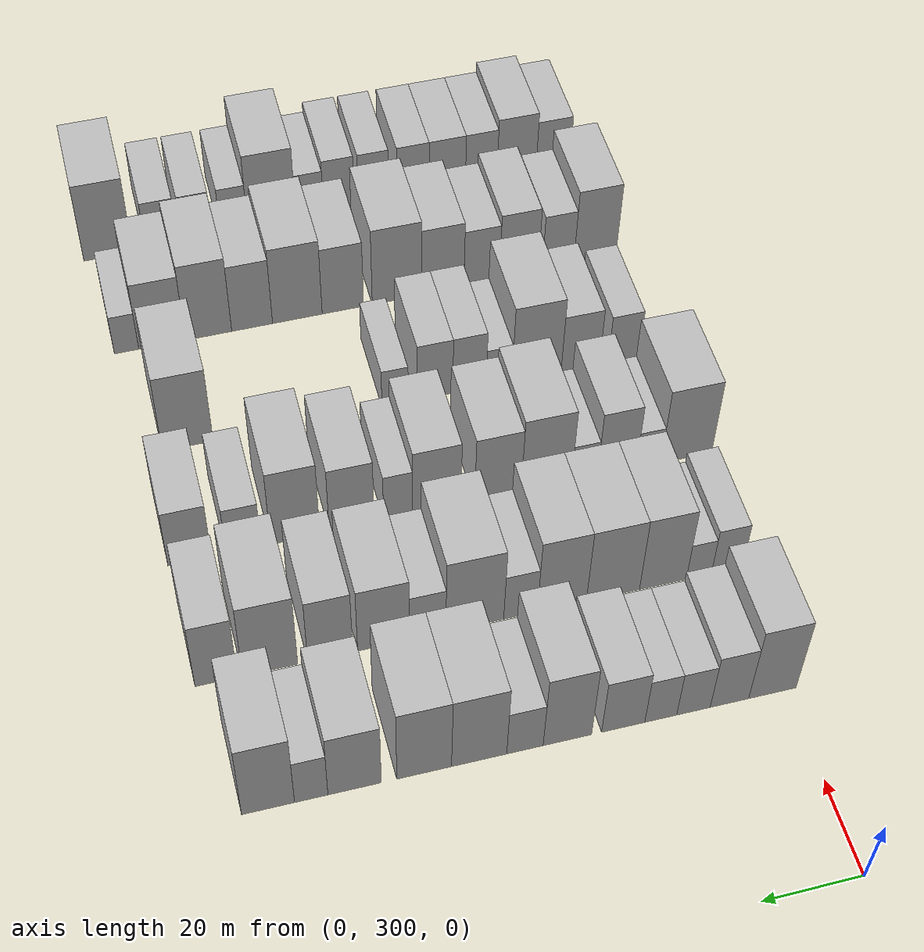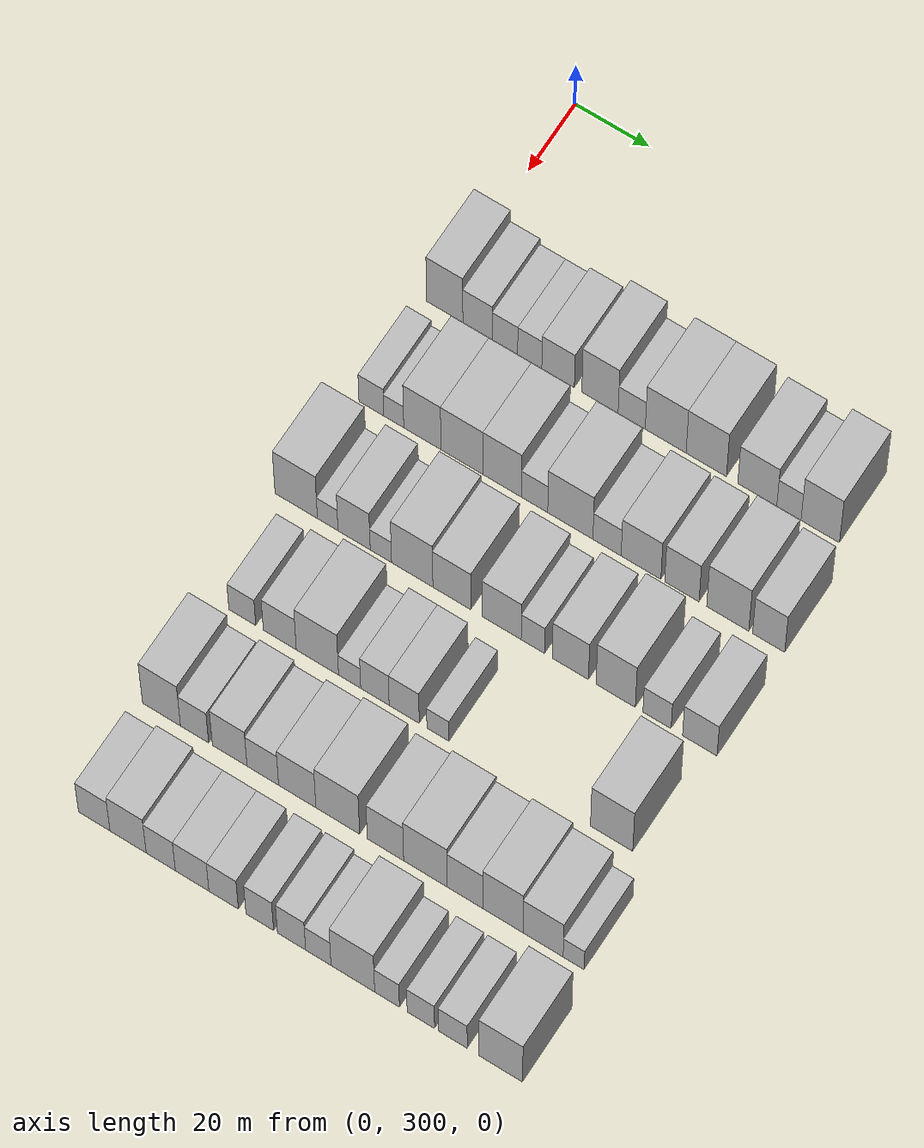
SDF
<sdf version="1.6">
 <world name="default">
  <model name="building_101">
   <static>1</static>
   <pose>50.0000 302.9413 0 0.000000 0.000000 0.000000</pose>
   <link name="link">
    <pose>0 0 12.00 0 0 0</pose>
    <collision name="collision"><geometry><box><size>20.0000 9.7665 24.0000</size></box></geometry></collision>
    <visual name="visual">
     <cast_shadows>0</cast_shadows>
     <geometry><box><size>20.0000 9.7665 24.0000</size></box></geometry>
     <material>
      <script>
       <uri>model://HANNAS_wall/materials/scripts</uri>
       <uri>model://HANNAS_wall/materials/textures</uri>
       <name>vrc/HANNAS_wall</name>
      </script>
     </material>
    </visual>
   </link>
  </model>
  <model name="building_102">
   <static>1</static>
   <pose>50.0000 311.7686 0 0.000000 0.000000 0.000000</pose>
   <link name="link">
    <pose>0 0 9.00 0 0 0</pose>
    <collision name="collision"><geometry><box><size>20.0000 7.8881 18.0000</size></box></geometry></collision>
    <visual name="visual">
     <cast_shadows>0</cast_shadows>
     <geometry><box><size>20.0000 7.8881 18.0000</size></box></geometry>
     <material>
      <script>
       <uri>model://HANNAS_wall/materials/scripts</uri>
       <uri>model://HANNAS_wall/materials/textures</uri>
       <name>vrc/HANNAS_wall</name>
      </script>
     </material>
    </visual>
   </link>
  </model>
  <model name="building_103">
   <static>1</static>
   <pose>50.0000 319.1199 0 0.000000 0.000000 0.000000</pose>
   <link name="link">
    <pose>0 0 7.50 0 0 0</pose>
    <collision name="collision"><geometry><box><size>20.0000 6.8146 15.0000</size></box></geometry></collision>
    <visual name="visual">
     <cast_shadows>0</cast_shadows>
     <geometry><box><size>20.0000 6.8146 15.0000</size></box></geometry>
     <material>
      <script>
       <uri>model://HANNAS_wall/materials/scripts</uri>
       <uri>model://HANNAS_wall/materials/textures</uri>
       <name>vrc/HANNAS_wall</name>
      </script>
     </material>
    </visual>
   </link>
  </model>
  <model name="building_104">
   <static>1</static>
   <pose>50.0000 325.7570 0 0.000000 0.000000 0.000000</pose>
   <link name="link">
    <pose>0 0 7.50 0 0 0</pose>
    <collision name="collision"><geometry><box><size>20.0000 6.4597 15.0000</size></box></geometry></collision>
    <visual name="visual">
     <cast_shadows>0</cast_shadows>
     <geometry><box><size>20.0000 6.4597 15.0000</size></box></geometry>
     <material>
      <script>
       <uri>model://HANNAS_wall/materials/scripts</uri>
       <uri>model://HANNAS_wall/materials/textures</uri>
       <name>vrc/HANNAS_wall</name>
      </script>
     </material>
    </visual>
   </link>
  </model>
  <model name="building_105">
   <static>1</static>
   <pose>50.0000 333.3374 0 0.000000 0.000000 0.000000</pose>
   <link name="link">
    <pose>0 0 9.00 0 0 0</pose>
    <collision name="collision"><geometry><box><size>20.0000 8.7010 18.0000</size></box></geometry></collision>
    <visual name="visual">
     <cast_shadows>0</cast_shadows>
     <geometry><box><size>20.0000 8.7010 18.0000</size></box></geometry>
     <material>
      <script>
       <uri>model://HANNAS_wall/materials/scripts</uri>
       <uri>model://HANNAS_wall/materials/textures</uri>
       <name>vrc/HANNAS_wall</name>
      </script>
     </material>
    </visual>
   </link>
  </model>
  <model name="building_106">
   <static>1</static>
   <pose>50.0000 344.5230 0 0.000000 0.000000 0.000000</pose>
   <link name="link">
    <pose>0 0 12.00 0 0 0</pose>
    <collision name="collision"><geometry><box><size>20.0000 9.6703 24.0000</size></box></geometry></collision>
    <visual name="visual">
     <cast_shadows>0</cast_shadows>
     <geometry><box><size>20.0000 9.6703 24.0000</size></box></geometry>
     <material>
      <script>
       <uri>model://HANNAS_wall/materials/scripts</uri>
       <uri>model://HANNAS_wall/materials/textures</uri>
       <name>vrc/HANNAS_wall</name>
      </script>
     </material>
    </visual>
   </link>
  </model>
  <model name="building_107">
   <static>1</static>
   <pose>50.0000 352.9662 0 0.000000 0.000000 0.000000</pose>
   <link name="link">
    <pose>0 0 7.50 0 0 0</pose>
    <collision name="collision"><geometry><box><size>20.0000 7.2159 15.0000</size></box></geometry></collision>
    <visual name="visual">
     <cast_shadows>0</cast_shadows>
     <geometry><box><size>20.0000 7.2159 15.0000</size></box></geometry>
     <material>
      <script>
       <uri>model://HANNAS_wall/materials/scripts</uri>
       <uri>model://HANNAS_wall/materials/textures</uri>
       <name>vrc/HANNAS_wall</name>
      </script>
     </material>
    </visual>
   </link>
  </model>
  <model name="building_108">
   <static>1</static>
   <pose>50.0000 362.0036 0 0.000000 0.000000 0.000000</pose>
   <link name="link">
    <pose>0 0 12.00 0 0 0</pose>
    <collision name="collision"><geometry><box><size>20.0000 10.8590 24.0000</size></box></geometry></collision>
    <visual name="visual">
     <cast_shadows>0</cast_shadows>
     <geometry><box><size>20.0000 10.8590 24.0000</size></box></geometry>
     <material>
      <script>
       <uri>model://HANNAS_wall/materials/scripts</uri>
       <uri>model://HANNAS_wall/materials/textures</uri>
       <name>vrc/HANNAS_wall</name>
      </script>
     </material>
    </visual>
   </link>
  </model>
  <model name="building_109">
   <static>1</static>
   <pose>50.0000 372.7715 0 0.000000 0.000000 0.000000</pose>
   <link name="link">
    <pose>0 0 12.00 0 0 0</pose>
    <collision name="collision"><geometry><box><size>20.0000 10.6767 24.0000</size></box></geometry></collision>
    <visual name="visual">
     <cast_shadows>0</cast_shadows>
     <geometry><box><size>20.0000 10.6767 24.0000</size></box></geometry>
     <material>
      <script>
       <uri>model://HANNAS_wall/materials/scripts</uri>
       <uri>model://HANNAS_wall/materials/textures</uri>
       <name>vrc/HANNAS_wall</name>
      </script>
     </material>
    </visual>
   </link>
  </model>
  <model name="building_110">
   <static>1</static>
   <pose>50.0000 386.2558 0 0.000000 0.000000 0.000000</pose>
   <link name="link">
    <pose>0 0 10.50 0 0 0</pose>
    <collision name="collision"><geometry><box><size>20.0000 10.2919 21.0000</size></box></geometry></collision>
    <visual name="visual">
     <cast_shadows>0</cast_shadows>
     <geometry><box><size>20.0000 10.2919 21.0000</size></box></geometry>
     <material>
      <script>
       <uri>model://HANNAS_wall/materials/scripts</uri>
       <uri>model://HANNAS_wall/materials/textures</uri>
       <name>vrc/HANNAS_wall</name>
      </script>
     </material>
    </visual>
   </link>
  </model>
  <model name="building_111">
   <static>1</static>
   <pose>50.0000 394.5986 0 0.000000 0.000000 0.000000</pose>
   <link name="link">
    <pose>0 0 7.50 0 0 0</pose>
    <collision name="collision"><geometry><box><size>20.0000 6.3937 15.0000</size></box></geometry></collision>
    <visual name="visual">
     <cast_shadows>0</cast_shadows>
     <geometry><box><size>20.0000 6.3937 15.0000</size></box></geometry>
     <material>
      <script>
       <uri>model://HANNAS_wall/materials/scripts</uri>
       <uri>model://HANNAS_wall/materials/textures</uri>
       <name>vrc/HANNAS_wall</name>
      </script>
     </material>
    </visual>
   </link>
  </model>
  <model name="building_112">
   <static>1</static>
   <pose>50.0000 402.8435 0 0.000000 0.000000 0.000000</pose>
   <link name="link">
    <pose>0 0 12.00 0 0 0</pose>
    <collision name="collision"><geometry><box><size>20.0000 10.0961 24.0000</size></box></geometry></collision>
    <visual name="visual">
     <cast_shadows>0</cast_shadows>
     <geometry><box><size>20.0000 10.0961 24.0000</size></box></geometry>
     <material>
      <script>
       <uri>model://HANNAS_wall/materials/scripts</uri>
       <uri>model://HANNAS_wall/materials/textures</uri>
       <name>vrc/HANNAS_wall</name>
      </script>
     </material>
    </visual>
   </link>
  </model>
  <model name="building_216">
   <static>1</static>
   <pose>79.0000 301.9213 0 0.000000 0.000000 0.000000</pose>
   <link name="link">
    <pose>0 0 7.50 0 0 0</pose>
    <collision name="collision"><geometry><box><size>20.0000 6.6707 15.0000</size></box></geometry></collision>
    <visual name="visual">
     <cast_shadows>0</cast_shadows>
     <geometry><box><size>20.0000 6.6707 15.0000</size></box></geometry>
     <material>
      <script>
       <uri>model://HANNAS_wall/materials/scripts</uri>
       <uri>model://HANNAS_wall/materials/textures</uri>
       <name>vrc/HANNAS_wall</name>
      </script>
     </material>
    </visual>
   </link>
  </model>
  <model name="building_217">
   <static>1</static>
   <pose>79.0000 307.9347 0 0.000000 0.000000 0.000000</pose>
   <link name="link">
    <pose>0 0 6.00 0 0 0</pose>
    <collision name="collision"><geometry><box><size>20.0000 5.3560 12.0000</size></box></geometry></collision>
    <visual name="visual">
     <cast_shadows>0</cast_shadows>
     <geometry><box><size>20.0000 5.3560 12.0000</size></box></geometry>
     <material>
      <script>
       <uri>model://HANNAS_wall/materials/scripts</uri>
       <uri>model://HANNAS_wall/materials/textures</uri>
       <name>vrc/HANNAS_wall</name>
      </script>
     </material>
    </visual>
   </link>
  </model>
  <model name="building_218">
   <static>1</static>
   <pose>79.0000 315.5856 0 0.000000 0.000000 0.000000</pose>
   <link name="link">
    <pose>0 0 12.00 0 0 0</pose>
    <collision name="collision"><geometry><box><size>20.0000 9.9458 24.0000</size></box></geometry></collision>
    <visual name="visual">
     <cast_shadows>0</cast_shadows>
     <geometry><box><size>20.0000 9.9458 24.0000</size></box></geometry>
     <material>
      <script>
       <uri>model://HANNAS_wall/materials/scripts</uri>
       <uri>model://HANNAS_wall/materials/textures</uri>
       <name>vrc/HANNAS_wall</name>
      </script>
     </material>
    </visual>
   </link>
  </model>
  <model name="building_219">
   <static>1</static>
   <pose>79.0000 326.1635 0 0.000000 0.000000 0.000000</pose>
   <link name="link">
    <pose>0 0 12.00 0 0 0</pose>
    <collision name="collision"><geometry><box><size>20.0000 11.2100 24.0000</size></box></geometry></collision>
    <visual name="visual">
     <cast_shadows>0</cast_shadows>
     <geometry><box><size>20.0000 11.2100 24.0000</size></box></geometry>
     <material>
      <script>
       <uri>model://HANNAS_wall/materials/scripts</uri>
       <uri>model://HANNAS_wall/materials/textures</uri>
       <name>vrc/HANNAS_wall</name>
      </script>
     </material>
    </visual>
   </link>
  </model>
  <model name="building_220">
   <static>1</static>
   <pose>79.0000 336.9080 0 0.000000 0.000000 0.000000</pose>
   <link name="link">
    <pose>0 0 12.00 0 0 0</pose>
    <collision name="collision"><geometry><box><size>20.0000 10.2789 24.0000</size></box></geometry></collision>
    <visual name="visual">
     <cast_shadows>0</cast_shadows>
     <geometry><box><size>20.0000 10.2789 24.0000</size></box></geometry>
     <material>
      <script>
       <uri>model://HANNAS_wall/materials/scripts</uri>
       <uri>model://HANNAS_wall/materials/textures</uri>
       <name>vrc/HANNAS_wall</name>
      </script>
     </material>
    </visual>
   </link>
  </model>
  <model name="building_221">
   <static>1</static>
   <pose>79.0000 345.5258 0 0.000000 0.000000 0.000000</pose>
   <link name="link">
    <pose>0 0 7.50 0 0 0</pose>
    <collision name="collision"><geometry><box><size>20.0000 6.9569 15.0000</size></box></geometry></collision>
    <visual name="visual">
     <cast_shadows>0</cast_shadows>
     <geometry><box><size>20.0000 6.9569 15.0000</size></box></geometry>
     <material>
      <script>
       <uri>model://HANNAS_wall/materials/scripts</uri>
       <uri>model://HANNAS_wall/materials/textures</uri>
       <name>vrc/HANNAS_wall</name>
      </script>
     </material>
    </visual>
   </link>
  </model>
  <model name="building_222">
   <static>1</static>
   <pose>79.0000 354.9877 0 0.000000 0.000000 0.000000</pose>
   <link name="link">
    <pose>0 0 12.00 0 0 0</pose>
    <collision name="collision"><geometry><box><size>20.0000 11.9668 24.0000</size></box></geometry></collision>
    <visual name="visual">
     <cast_shadows>0</cast_shadows>
     <geometry><box><size>20.0000 11.9668 24.0000</size></box></geometry>
     <material>
      <script>
       <uri>model://HANNAS_wall/materials/scripts</uri>
       <uri>model://HANNAS_wall/materials/textures</uri>
       <name>vrc/HANNAS_wall</name>
      </script>
     </material>
    </visual>
   </link>
  </model>
  <model name="building_223">
   <static>1</static>
   <pose>79.0000 364.6992 0 0.000000 0.000000 0.000000</pose>
   <link name="link">
    <pose>0 0 7.50 0 0 0</pose>
    <collision name="collision"><geometry><box><size>20.0000 7.4563 15.0000</size></box></geometry></collision>
    <visual name="visual">
     <cast_shadows>0</cast_shadows>
     <geometry><box><size>20.0000 7.4563 15.0000</size></box></geometry>
     <material>
      <script>
       <uri>model://HANNAS_wall/materials/scripts</uri>
       <uri>model://HANNAS_wall/materials/textures</uri>
       <name>vrc/HANNAS_wall</name>
      </script>
     </material>
    </visual>
   </link>
  </model>
  <model name="building_224">
   <static>1</static>
   <pose>79.0000 373.6719 0 0.000000 0.000000 0.000000</pose>
   <link name="link">
    <pose>0 0 10.50 0 0 0</pose>
    <collision name="collision"><geometry><box><size>20.0000 10.4891 21.0000</size></box></geometry></collision>
    <visual name="visual">
     <cast_shadows>0</cast_shadows>
     <geometry><box><size>20.0000 10.4891 21.0000</size></box></geometry>
     <material>
      <script>
       <uri>model://HANNAS_wall/materials/scripts</uri>
       <uri>model://HANNAS_wall/materials/textures</uri>
       <name>vrc/HANNAS_wall</name>
      </script>
     </material>
    </visual>
   </link>
  </model>
  <model name="building_225">
   <static>1</static>
   <pose>79.0000 384.4469 0 0.000000 0.000000 0.000000</pose>
   <link name="link">
    <pose>0 0 10.50 0 0 0</pose>
    <collision name="collision"><geometry><box><size>20.0000 9.0608 21.0000</size></box></geometry></collision>
    <visual name="visual">
     <cast_shadows>0</cast_shadows>
     <geometry><box><size>20.0000 9.0608 21.0000</size></box></geometry>
     <material>
      <script>
       <uri>model://HANNAS_wall/materials/scripts</uri>
       <uri>model://HANNAS_wall/materials/textures</uri>
       <name>vrc/HANNAS_wall</name>
      </script>
     </material>
    </visual>
   </link>
  </model>
  <model name="building_226">
   <static>1</static>
   <pose>79.0000 396.4962 0 0.000000 0.000000 0.000000</pose>
   <link name="link">
    <pose>0 0 12.00 0 0 0</pose>
    <collision name="collision"><geometry><box><size>20.0000 11.0379 24.0000</size></box></geometry></collision>
    <visual name="visual">
     <cast_shadows>0</cast_shadows>
     <geometry><box><size>20.0000 11.0379 24.0000</size></box></geometry>
     <material>
      <script>
       <uri>model://HANNAS_wall/materials/scripts</uri>
       <uri>model://HANNAS_wall/materials/textures</uri>
       <name>vrc/HANNAS_wall</name>
      </script>
     </material>
    </visual>
   </link>
  </model>
  <model name="building_227">
   <static>1</static>
   <pose>79.0000 407.2242 0 0.000000 0.000000 0.000000</pose>
   <link name="link">
    <pose>0 0 10.50 0 0 0</pose>
    <collision name="collision"><geometry><box><size>20.0000 8.4182 21.0000</size></box></geometry></collision>
    <visual name="visual">
     <cast_shadows>0</cast_shadows>
     <geometry><box><size>20.0000 8.4182 21.0000</size></box></geometry>
     <material>
      <script>
       <uri>model://HANNAS_wall/materials/scripts</uri>
       <uri>model://HANNAS_wall/materials/textures</uri>
       <name>vrc/HANNAS_wall</name>
      </script>
     </material>
    </visual>
   </link>
  </model>
  <model name="building_325">
   <static>1</static>
   <pose>108.0000 300.6430 0 0.000000 0.000000 0.000000</pose>
   <link name="link">
    <pose>0 0 12.00 0 0 0</pose>
    <collision name="collision"><geometry><box><size>20.0000 11.3291 24.0000</size></box></geometry></collision>
    <visual name="visual">
     <cast_shadows>0</cast_shadows>
     <geometry><box><size>20.0000 11.3291 24.0000</size></box></geometry>
     <material>
      <script>
       <uri>model://HANNAS_wall/materials/scripts</uri>
       <uri>model://HANNAS_wall/materials/textures</uri>
       <name>vrc/HANNAS_wall</name>
      </script>
     </material>
    </visual>
   </link>
  </model>
  <model name="building_326">
   <static>1</static>
   <pose>108.0000 309.0615 0 0.000000 0.000000 0.000000</pose>
   <link name="link">
    <pose>0 0 6.00 0 0 0</pose>
    <collision name="collision"><geometry><box><size>20.0000 5.5080 12.0000</size></box></geometry></collision>
    <visual name="visual">
     <cast_shadows>0</cast_shadows>
     <geometry><box><size>20.0000 5.5080 12.0000</size></box></geometry>
     <material>
      <script>
       <uri>model://HANNAS_wall/materials/scripts</uri>
       <uri>model://HANNAS_wall/materials/textures</uri>
       <name>vrc/HANNAS_wall</name>
      </script>
     </material>
    </visual>
   </link>
  </model>
  <model name="building_327">
   <static>1</static>
   <pose>108.0000 316.1140 0 0.000000 0.000000 0.000000</pose>
   <link name="link">
    <pose>0 0 10.50 0 0 0</pose>
    <collision name="collision"><geometry><box><size>20.0000 8.5969 21.0000</size></box></geometry></collision>
    <visual name="visual">
     <cast_shadows>0</cast_shadows>
     <geometry><box><size>20.0000 8.5969 21.0000</size></box></geometry>
     <material>
      <script>
       <uri>model://HANNAS_wall/materials/scripts</uri>
       <uri>model://HANNAS_wall/materials/textures</uri>
       <name>vrc/HANNAS_wall</name>
      </script>
     </material>
    </visual>
   </link>
  </model>
  <model name="building_328">
   <static>1</static>
   <pose>108.0000 323.2522 0 0.000000 0.000000 0.000000</pose>
   <link name="link">
    <pose>0 0 6.00 0 0 0</pose>
    <collision name="collision"><geometry><box><size>20.0000 5.6795 12.0000</size></box></geometry></collision>
    <visual name="visual">
     <cast_shadows>0</cast_shadows>
     <geometry><box><size>20.0000 5.6795 12.0000</size></box></geometry>
     <material>
      <script>
       <uri>model://HANNAS_wall/materials/scripts</uri>
       <uri>model://HANNAS_wall/materials/textures</uri>
       <name>vrc/HANNAS_wall</name>
      </script>
     </material>
    </visual>
   </link>
  </model>
  <model name="building_329">
   <static>1</static>
   <pose>108.0000 331.5801 0 0.000000 0.000000 0.000000</pose>
   <link name="link">
    <pose>0 0 12.00 0 0 0</pose>
    <collision name="collision"><geometry><box><size>20.0000 10.9763 24.0000</size></box></geometry></collision>
    <visual name="visual">
     <cast_shadows>0</cast_shadows>
     <geometry><box><size>20.0000 10.9763 24.0000</size></box></geometry>
     <material>
      <script>
       <uri>model://HANNAS_wall/materials/scripts</uri>
       <uri>model://HANNAS_wall/materials/textures</uri>
       <name>vrc/HANNAS_wall</name>
      </script>
     </material>
    </visual>
   </link>
  </model>
  <model name="building_330">
   <static>1</static>
   <pose>108.0000 342.1056 0 0.000000 0.000000 0.000000</pose>
   <link name="link">
    <pose>0 0 10.50 0 0 0</pose>
    <collision name="collision"><geometry><box><size>20.0000 10.0747 21.0000</size></box></geometry></collision>
    <visual name="visual">
     <cast_shadows>0</cast_shadows>
     <geometry><box><size>20.0000 10.0747 21.0000</size></box></geometry>
     <material>
      <script>
       <uri>model://HANNAS_wall/materials/scripts</uri>
       <uri>model://HANNAS_wall/materials/textures</uri>
       <name>vrc/HANNAS_wall</name>
      </script>
     </material>
    </visual>
   </link>
  </model>
  <model name="building_331">
   <static>1</static>
   <pose>108.0000 355.2888 0 0.000000 0.000000 0.000000</pose>
   <link name="link">
    <pose>0 0 10.50 0 0 0</pose>
    <collision name="collision"><geometry><box><size>20.0000 10.2918 21.0000</size></box></geometry></collision>
    <visual name="visual">
     <cast_shadows>0</cast_shadows>
     <geometry><box><size>20.0000 10.2918 21.0000</size></box></geometry>
     <material>
      <script>
       <uri>model://HANNAS_wall/materials/scripts</uri>
       <uri>model://HANNAS_wall/materials/textures</uri>
       <name>vrc/HANNAS_wall</name>
      </script>
     </material>
    </visual>
   </link>
  </model>
  <model name="building_332">
   <static>1</static>
   <pose>108.0000 363.5274 0 0.000000 0.000000 0.000000</pose>
   <link name="link">
    <pose>0 0 7.50 0 0 0</pose>
    <collision name="collision"><geometry><box><size>20.0000 6.1853 15.0000</size></box></geometry></collision>
    <visual name="visual">
     <cast_shadows>0</cast_shadows>
     <geometry><box><size>20.0000 6.1853 15.0000</size></box></geometry>
     <material>
      <script>
       <uri>model://HANNAS_wall/materials/scripts</uri>
       <uri>model://HANNAS_wall/materials/textures</uri>
       <name>vrc/HANNAS_wall</name>
      </script>
     </material>
    </visual>
   </link>
  </model>
  <model name="building_333">
   <static>1</static>
   <pose>108.0000 373.3755 0 0.000000 0.000000 0.000000</pose>
   <link name="link">
    <pose>0 0 10.50 0 0 0</pose>
    <collision name="collision"><geometry><box><size>20.0000 9.5109 21.0000</size></box></geometry></collision>
    <visual name="visual">
     <cast_shadows>0</cast_shadows>
     <geometry><box><size>20.0000 9.5109 21.0000</size></box></geometry>
     <material>
      <script>
       <uri>model://HANNAS_wall/materials/scripts</uri>
       <uri>model://HANNAS_wall/materials/textures</uri>
       <name>vrc/HANNAS_wall</name>
      </script>
     </material>
    </visual>
   </link>
  </model>
  <model name="building_334">
   <static>1</static>
   <pose>108.0000 385.2758 0 0.000000 0.000000 0.000000</pose>
   <link name="link">
    <pose>0 0 12.00 0 0 0</pose>
    <collision name="collision"><geometry><box><size>20.0000 10.2898 24.0000</size></box></geometry></collision>
    <visual name="visual">
     <cast_shadows>0</cast_shadows>
     <geometry><box><size>20.0000 10.2898 24.0000</size></box></geometry>
     <material>
      <script>
       <uri>model://HANNAS_wall/materials/scripts</uri>
       <uri>model://HANNAS_wall/materials/textures</uri>
       <name>vrc/HANNAS_wall</name>
      </script>
     </material>
    </visual>
   </link>
  </model>
  <model name="building_335">
   <static>1</static>
   <pose>108.0000 396.0997 0 0.000000 0.000000 0.000000</pose>
   <link name="link">
    <pose>0 0 7.50 0 0 0</pose>
    <collision name="collision"><geometry><box><size>20.0000 7.3579 15.0000</size></box></geometry></collision>
    <visual name="visual">
     <cast_shadows>0</cast_shadows>
     <geometry><box><size>20.0000 7.3579 15.0000</size></box></geometry>
     <material>
      <script>
       <uri>model://HANNAS_wall/materials/scripts</uri>
       <uri>model://HANNAS_wall/materials/textures</uri>
       <name>vrc/HANNAS_wall</name>
      </script>
     </material>
    </visual>
   </link>
  </model>
  <model name="building_336">
   <static>1</static>
   <pose>108.0000 407.2700 0 0.000000 0.000000 0.000000</pose>
   <link name="link">
    <pose>0 0 9.00 0 0 0</pose>
    <collision name="collision"><geometry><box><size>20.0000 8.9828 18.0000</size></box></geometry></collision>
    <visual name="visual">
     <cast_shadows>0</cast_shadows>
     <geometry><box><size>20.0000 8.9828 18.0000</size></box></geometry>
     <material>
      <script>
       <uri>model://HANNAS_wall/materials/scripts</uri>
       <uri>model://HANNAS_wall/materials/textures</uri>
       <name>vrc/HANNAS_wall</name>
      </script>
     </material>
    </visual>
   </link>
  </model>
  <model name="building_440">
   <static>1</static>
   <pose>137.0000 305.2511 0 0.000000 0.000000 0.000000</pose>
   <link name="link">
    <pose>0 0 7.50 0 0 0</pose>
    <collision name="collision"><geometry><box><size>20.0000 7.1652 15.0000</size></box></geometry></collision>
    <visual name="visual">
     <cast_shadows>0</cast_shadows>
     <geometry><box><size>20.0000 7.1652 15.0000</size></box></geometry>
     <material>
      <script>
       <uri>model://HANNAS_wall/materials/scripts</uri>
       <uri>model://HANNAS_wall/materials/textures</uri>
       <name>vrc/HANNAS_wall</name>
      </script>
     </material>
    </visual>
   </link>
  </model>
  <model name="building_441">
   <static>1</static>
   <pose>137.0000 315.2217 0 0.000000 0.000000 0.000000</pose>
   <link name="link">
    <pose>0 0 9.00 0 0 0</pose>
    <collision name="collision"><geometry><box><size>20.0000 8.7760 18.0000</size></box></geometry></collision>
    <visual name="visual">
     <cast_shadows>0</cast_shadows>
     <geometry><box><size>20.0000 8.7760 18.0000</size></box></geometry>
     <material>
      <script>
       <uri>model://HANNAS_wall/materials/scripts</uri>
       <uri>model://HANNAS_wall/materials/textures</uri>
       <name>vrc/HANNAS_wall</name>
      </script>
     </material>
    </visual>
   </link>
  </model>
  <model name="building_442">
   <static>1</static>
   <pose>137.0000 325.2179 0 0.000000 0.000000 0.000000</pose>
   <link name="link">
    <pose>0 0 12.00 0 0 0</pose>
    <collision name="collision"><geometry><box><size>20.0000 11.2164 24.0000</size></box></geometry></collision>
    <visual name="visual">
     <cast_shadows>0</cast_shadows>
     <geometry><box><size>20.0000 11.2164 24.0000</size></box></geometry>
     <material>
      <script>
       <uri>model://HANNAS_wall/materials/scripts</uri>
       <uri>model://HANNAS_wall/materials/textures</uri>
       <name>vrc/HANNAS_wall</name>
      </script>
     </material>
    </visual>
   </link>
  </model>
  <model name="building_443">
   <static>1</static>
   <pose>137.0000 333.7585 0 0.000000 0.000000 0.000000</pose>
   <link name="link">
    <pose>0 0 6.00 0 0 0</pose>
    <collision name="collision"><geometry><box><size>20.0000 5.8650 12.0000</size></box></geometry></collision>
    <visual name="visual">
     <cast_shadows>0</cast_shadows>
     <geometry><box><size>20.0000 5.8650 12.0000</size></box></geometry>
     <material>
      <script>
       <uri>model://HANNAS_wall/materials/scripts</uri>
       <uri>model://HANNAS_wall/materials/textures</uri>
       <name>vrc/HANNAS_wall</name>
      </script>
     </material>
    </visual>
   </link>
  </model>
  <model name="building_444">
   <static>1</static>
   <pose>137.0000 340.4439 0 0.000000 0.000000 0.000000</pose>
   <link name="link">
    <pose>0 0 9.00 0 0 0</pose>
    <collision name="collision"><geometry><box><size>20.0000 7.5057 18.0000</size></box></geometry></collision>
    <visual name="visual">
     <cast_shadows>0</cast_shadows>
     <geometry><box><size>20.0000 7.5057 18.0000</size></box></geometry>
     <material>
      <script>
       <uri>model://HANNAS_wall/materials/scripts</uri>
       <uri>model://HANNAS_wall/materials/textures</uri>
       <name>vrc/HANNAS_wall</name>
      </script>
     </material>
    </visual>
   </link>
  </model>
  <model name="building_445">
   <static>1</static>
   <pose>137.0000 348.1734 0 0.000000 0.000000 0.000000</pose>
   <link name="link">
    <pose>0 0 9.00 0 0 0</pose>
    <collision name="collision"><geometry><box><size>20.0000 7.9533 18.0000</size></box></geometry></collision>
    <visual name="visual">
     <cast_shadows>0</cast_shadows>
     <geometry><box><size>20.0000 7.9533 18.0000</size></box></geometry>
     <material>
      <script>
       <uri>model://HANNAS_wall/materials/scripts</uri>
       <uri>model://HANNAS_wall/materials/textures</uri>
       <name>vrc/HANNAS_wall</name>
      </script>
     </material>
    </visual>
   </link>
  </model>
  <model name="building_446">
   <static>1</static>
   <pose>137.0000 357.0701 0 0.000000 0.000000 0.000000</pose>
   <link name="link">
    <pose>0 0 6.00 0 0 0</pose>
    <collision name="collision"><geometry><box><size>20.0000 5.8400 12.0000</size></box></geometry></collision>
    <visual name="visual">
     <cast_shadows>0</cast_shadows>
     <geometry><box><size>20.0000 5.8400 12.0000</size></box></geometry>
     <material>
      <script>
       <uri>model://HANNAS_wall/materials/scripts</uri>
       <uri>model://HANNAS_wall/materials/textures</uri>
       <name>vrc/HANNAS_wall</name>
      </script>
     </material>
    </visual>
   </link>
  </model>
  <model name="building_447">
   <static>1</static>
   <pose>137.0000 402.5017 0 0.000000 0.000000 0.000000</pose>
   <link name="link">
    <pose>0 0 12.00 0 0 0</pose>
    <collision name="collision"><geometry><box><size>20.0000 11.0078 24.0000</size></box></geometry></collision>
    <visual name="visual">
     <cast_shadows>0</cast_shadows>
     <geometry><box><size>20.0000 11.0078 24.0000</size></box></geometry>
     <material>
      <script>
       <uri>model://HANNAS_wall/materials/scripts</uri>
       <uri>model://HANNAS_wall/materials/textures</uri>
       <name>vrc/HANNAS_wall</name>
      </script>
     </material>
    </visual>
   </link>
  </model>
  <model name="building_551">
   <static>1</static>
   <pose>166.0000 302.8877 0 0.000000 0.000000 0.000000</pose>
   <link name="link">
    <pose>0 0 12.00 0 0 0</pose>
    <collision name="collision"><geometry><box><size>20.0000 10.0688 24.0000</size></box></geometry></collision>
    <visual name="visual">
     <cast_shadows>0</cast_shadows>
     <geometry><box><size>20.0000 10.0688 24.0000</size></box></geometry>
     <material>
      <script>
       <uri>model://HANNAS_wall/materials/scripts</uri>
       <uri>model://HANNAS_wall/materials/textures</uri>
       <name>vrc/HANNAS_wall</name>
      </script>
     </material>
    </visual>
   </link>
  </model>
  <model name="building_552">
   <static>1</static>
   <pose>166.0000 311.6586 0 0.000000 0.000000 0.000000</pose>
   <link name="link">
    <pose>0 0 9.00 0 0 0</pose>
    <collision name="collision"><geometry><box><size>20.0000 7.4729 18.0000</size></box></geometry></collision>
    <visual name="visual">
     <cast_shadows>0</cast_shadows>
     <geometry><box><size>20.0000 7.4729 18.0000</size></box></geometry>
     <material>
      <script>
       <uri>model://HANNAS_wall/materials/scripts</uri>
       <uri>model://HANNAS_wall/materials/textures</uri>
       <name>vrc/HANNAS_wall</name>
      </script>
     </material>
    </visual>
   </link>
  </model>
  <model name="building_553">
   <static>1</static>
   <pose>166.0000 320.9724 0 0.000000 0.000000 0.000000</pose>
   <link name="link">
    <pose>0 0 10.50 0 0 0</pose>
    <collision name="collision"><geometry><box><size>20.0000 9.1549 21.0000</size></box></geometry></collision>
    <visual name="visual">
     <cast_shadows>0</cast_shadows>
     <geometry><box><size>20.0000 9.1549 21.0000</size></box></geometry>
     <material>
      <script>
       <uri>model://HANNAS_wall/materials/scripts</uri>
       <uri>model://HANNAS_wall/materials/textures</uri>
       <name>vrc/HANNAS_wall</name>
      </script>
     </material>
    </visual>
   </link>
  </model>
  <model name="building_554">
   <static>1</static>
   <pose>166.0000 329.7254 0 0.000000 0.000000 0.000000</pose>
   <link name="link">
    <pose>0 0 9.00 0 0 0</pose>
    <collision name="collision"><geometry><box><size>20.0000 8.3510 18.0000</size></box></geometry></collision>
    <visual name="visual">
     <cast_shadows>0</cast_shadows>
     <geometry><box><size>20.0000 8.3510 18.0000</size></box></geometry>
     <material>
      <script>
       <uri>model://HANNAS_wall/materials/scripts</uri>
       <uri>model://HANNAS_wall/materials/textures</uri>
       <name>vrc/HANNAS_wall</name>
      </script>
     </material>
    </visual>
   </link>
  </model>
  <model name="building_555">
   <static>1</static>
   <pose>166.0000 338.8116 0 0.000000 0.000000 0.000000</pose>
   <link name="link">
    <pose>0 0 10.50 0 0 0</pose>
    <collision name="collision"><geometry><box><size>20.0000 9.8215 21.0000</size></box></geometry></collision>
    <visual name="visual">
     <cast_shadows>0</cast_shadows>
     <geometry><box><size>20.0000 9.8215 21.0000</size></box></geometry>
     <material>
      <script>
       <uri>model://HANNAS_wall/materials/scripts</uri>
       <uri>model://HANNAS_wall/materials/textures</uri>
       <name>vrc/HANNAS_wall</name>
      </script>
     </material>
    </visual>
   </link>
  </model>
  <model name="building_556">
   <static>1</static>
   <pose>166.0000 349.4715 0 0.000000 0.000000 0.000000</pose>
   <link name="link">
    <pose>0 0 12.00 0 0 0</pose>
    <collision name="collision"><geometry><box><size>20.0000 11.4983 24.0000</size></box></geometry></collision>
    <visual name="visual">
     <cast_shadows>0</cast_shadows>
     <geometry><box><size>20.0000 11.4983 24.0000</size></box></geometry>
     <material>
      <script>
       <uri>model://HANNAS_wall/materials/scripts</uri>
       <uri>model://HANNAS_wall/materials/textures</uri>
       <name>vrc/HANNAS_wall</name>
      </script>
     </material>
    </visual>
   </link>
  </model>
  <model name="building_557">
   <static>1</static>
   <pose>166.0000 361.9866 0 0.000000 0.000000 0.000000</pose>
   <link name="link">
    <pose>0 0 10.50 0 0 0</pose>
    <collision name="collision"><geometry><box><size>20.0000 9.5319 21.0000</size></box></geometry></collision>
    <visual name="visual">
     <cast_shadows>0</cast_shadows>
     <geometry><box><size>20.0000 9.5319 21.0000</size></box></geometry>
     <material>
      <script>
       <uri>model://HANNAS_wall/materials/scripts</uri>
       <uri>model://HANNAS_wall/materials/textures</uri>
       <name>vrc/HANNAS_wall</name>
      </script>
     </material>
    </visual>
   </link>
  </model>
  <model name="building_558">
   <static>1</static>
   <pose>166.0000 372.4311 0 0.000000 0.000000 0.000000</pose>
   <link name="link">
    <pose>0 0 12.00 0 0 0</pose>
    <collision name="collision"><geometry><box><size>20.0000 11.3571 24.0000</size></box></geometry></collision>
    <visual name="visual">
     <cast_shadows>0</cast_shadows>
     <geometry><box><size>20.0000 11.3571 24.0000</size></box></geometry>
     <material>
      <script>
       <uri>model://HANNAS_wall/materials/scripts</uri>
       <uri>model://HANNAS_wall/materials/textures</uri>
       <name>vrc/HANNAS_wall</name>
      </script>
     </material>
    </visual>
   </link>
  </model>
  <model name="building_559">
   <static>1</static>
   <pose>166.0000 382.7437 0 0.000000 0.000000 0.000000</pose>
   <link name="link">
    <pose>0 0 10.50 0 0 0</pose>
    <collision name="collision"><geometry><box><size>20.0000 9.2681 21.0000</size></box></geometry></collision>
    <visual name="visual">
     <cast_shadows>0</cast_shadows>
     <geometry><box><size>20.0000 9.2681 21.0000</size></box></geometry>
     <material>
      <script>
       <uri>model://HANNAS_wall/materials/scripts</uri>
       <uri>model://HANNAS_wall/materials/textures</uri>
       <name>vrc/HANNAS_wall</name>
      </script>
     </material>
    </visual>
   </link>
  </model>
  <model name="building_560">
   <static>1</static>
   <pose>166.0000 392.6123 0 0.000000 0.000000 0.000000</pose>
   <link name="link">
    <pose>0 0 12.00 0 0 0</pose>
    <collision name="collision"><geometry><box><size>20.0000 10.4690 24.0000</size></box></geometry></collision>
    <visual name="visual">
     <cast_shadows>0</cast_shadows>
     <geometry><box><size>20.0000 10.4690 24.0000</size></box></geometry>
     <material>
      <script>
       <uri>model://HANNAS_wall/materials/scripts</uri>
       <uri>model://HANNAS_wall/materials/textures</uri>
       <name>vrc/HANNAS_wall</name>
      </script>
     </material>
    </visual>
   </link>
  </model>
  <model name="building_561">
   <static>1</static>
   <pose>166.0000 403.0568 0 0.000000 0.000000 0.000000</pose>
   <link name="link">
    <pose>0 0 10.50 0 0 0</pose>
    <collision name="collision"><geometry><box><size>20.0000 10.4200 21.0000</size></box></geometry></collision>
    <visual name="visual">
     <cast_shadows>0</cast_shadows>
     <geometry><box><size>20.0000 10.4200 21.0000</size></box></geometry>
     <material>
      <script>
       <uri>model://HANNAS_wall/materials/scripts</uri>
       <uri>model://HANNAS_wall/materials/textures</uri>
       <name>vrc/HANNAS_wall</name>
      </script>
     </material>
    </visual>
   </link>
  </model>
  <model name="building_562">
   <static>1</static>
   <pose>166.0000 410.9884 0 0.000000 0.000000 0.000000</pose>
   <link name="link">
    <pose>0 0 6.00 0 0 0</pose>
    <collision name="collision"><geometry><box><size>20.0000 5.4432 12.0000</size></box></geometry></collision>
    <visual name="visual">
     <cast_shadows>0</cast_shadows>
     <geometry><box><size>20.0000 5.4432 12.0000</size></box></geometry>
     <material>
      <script>
       <uri>model://HANNAS_wall/materials/scripts</uri>
       <uri>model://HANNAS_wall/materials/textures</uri>
       <name>vrc/HANNAS_wall</name>
      </script>
     </material>
    </visual>
   </link>
  </model>
  <model name="building_669">
   <static>1</static>
   <pose>195.0000 304.3509 0 0.000000 0.000000 0.000000</pose>
   <link name="link">
    <pose>0 0 9.00 0 0 0</pose>
    <collision name="collision"><geometry><box><size>20.0000 8.3251 18.0000</size></box></geometry></collision>
    <visual name="visual">
     <cast_shadows>0</cast_shadows>
     <geometry><box><size>20.0000 8.3251 18.0000</size></box></geometry>
     <material>
      <script>
       <uri>model://HANNAS_wall/materials/scripts</uri>
       <uri>model://HANNAS_wall/materials/textures</uri>
       <name>vrc/HANNAS_wall</name>
      </script>
     </material>
    </visual>
   </link>
  </model>
  <model name="building_670">
   <static>1</static>
   <pose>195.0000 313.2936 0 0.000000 0.000000 0.000000</pose>
   <link name="link">
    <pose>0 0 10.50 0 0 0</pose>
    <collision name="collision"><geometry><box><size>20.0000 9.5605 21.0000</size></box></geometry></collision>
    <visual name="visual">
     <cast_shadows>0</cast_shadows>
     <geometry><box><size>20.0000 9.5605 21.0000</size></box></geometry>
     <material>
      <script>
       <uri>model://HANNAS_wall/materials/scripts</uri>
       <uri>model://HANNAS_wall/materials/textures</uri>
       <name>vrc/HANNAS_wall</name>
      </script>
     </material>
    </visual>
   </link>
  </model>
  <model name="building_671">
   <static>1</static>
   <pose>195.0000 321.9270 0 0.000000 0.000000 0.000000</pose>
   <link name="link">
    <pose>0 0 9.00 0 0 0</pose>
    <collision name="collision"><geometry><box><size>20.0000 7.7063 18.0000</size></box></geometry></collision>
    <visual name="visual">
     <cast_shadows>0</cast_shadows>
     <geometry><box><size>20.0000 7.7063 18.0000</size></box></geometry>
     <material>
      <script>
       <uri>model://HANNAS_wall/materials/scripts</uri>
       <uri>model://HANNAS_wall/materials/textures</uri>
       <name>vrc/HANNAS_wall</name>
      </script>
     </material>
    </visual>
   </link>
  </model>
  <model name="building_672">
   <static>1</static>
   <pose>195.0000 330.1887 0 0.000000 0.000000 0.000000</pose>
   <link name="link">
    <pose>0 0 9.00 0 0 0</pose>
    <collision name="collision"><geometry><box><size>20.0000 8.8170 18.0000</size></box></geometry></collision>
    <visual name="visual">
     <cast_shadows>0</cast_shadows>
     <geometry><box><size>20.0000 8.8170 18.0000</size></box></geometry>
     <material>
      <script>
       <uri>model://HANNAS_wall/materials/scripts</uri>
       <uri>model://HANNAS_wall/materials/textures</uri>
       <name>vrc/HANNAS_wall</name>
      </script>
     </material>
    </visual>
   </link>
  </model>
  <model name="building_673">
   <static>1</static>
   <pose>195.0000 338.4650 0 0.000000 0.000000 0.000000</pose>
   <link name="link">
    <pose>0 0 9.00 0 0 0</pose>
    <collision name="collision"><geometry><box><size>20.0000 7.7357 18.0000</size></box></geometry></collision>
    <visual name="visual">
     <cast_shadows>0</cast_shadows>
     <geometry><box><size>20.0000 7.7357 18.0000</size></box></geometry>
     <material>
      <script>
       <uri>model://HANNAS_wall/materials/scripts</uri>
       <uri>model://HANNAS_wall/materials/textures</uri>
       <name>vrc/HANNAS_wall</name>
      </script>
     </material>
    </visual>
   </link>
  </model>
  <model name="building_674">
   <static>1</static>
   <pose>195.0000 347.9507 0 0.000000 0.000000 0.000000</pose>
   <link name="link">
    <pose>0 0 9.00 0 0 0</pose>
    <collision name="collision"><geometry><box><size>20.0000 7.2356 18.0000</size></box></geometry></collision>
    <visual name="visual">
     <cast_shadows>0</cast_shadows>
     <geometry><box><size>20.0000 7.2356 18.0000</size></box></geometry>
     <material>
      <script>
       <uri>model://HANNAS_wall/materials/scripts</uri>
       <uri>model://HANNAS_wall/materials/textures</uri>
       <name>vrc/HANNAS_wall</name>
      </script>
     </material>
    </visual>
   </link>
  </model>
  <model name="building_675">
   <static>1</static>
   <pose>195.0000 356.2572 0 0.000000 0.000000 0.000000</pose>
   <link name="link">
    <pose>0 0 9.00 0 0 0</pose>
    <collision name="collision"><geometry><box><size>20.0000 7.3773 18.0000</size></box></geometry></collision>
    <visual name="visual">
     <cast_shadows>0</cast_shadows>
     <geometry><box><size>20.0000 7.3773 18.0000</size></box></geometry>
     <material>
      <script>
       <uri>model://HANNAS_wall/materials/scripts</uri>
       <uri>model://HANNAS_wall/materials/textures</uri>
       <name>vrc/HANNAS_wall</name>
      </script>
     </material>
    </visual>
   </link>
  </model>
  <model name="building_676">
   <static>1</static>
   <pose>195.0000 363.2551 0 0.000000 0.000000 0.000000</pose>
   <link name="link">
    <pose>0 0 7.50 0 0 0</pose>
    <collision name="collision"><geometry><box><size>20.0000 6.6186 15.0000</size></box></geometry></collision>
    <visual name="visual">
     <cast_shadows>0</cast_shadows>
     <geometry><box><size>20.0000 6.6186 15.0000</size></box></geometry>
     <material>
      <script>
       <uri>model://HANNAS_wall/materials/scripts</uri>
       <uri>model://HANNAS_wall/materials/textures</uri>
       <name>vrc/HANNAS_wall</name>
      </script>
     </material>
    </visual>
   </link>
  </model>
  <model name="building_677">
   <static>1</static>
   <pose>195.0000 372.2573 0 0.000000 0.000000 0.000000</pose>
   <link name="link">
    <pose>0 0 12.00 0 0 0</pose>
    <collision name="collision"><geometry><box><size>20.0000 11.3857 24.0000</size></box></geometry></collision>
    <visual name="visual">
     <cast_shadows>0</cast_shadows>
     <geometry><box><size>20.0000 11.3857 24.0000</size></box></geometry>
     <material>
      <script>
       <uri>model://HANNAS_wall/materials/scripts</uri>
       <uri>model://HANNAS_wall/materials/textures</uri>
       <name>vrc/HANNAS_wall</name>
      </script>
     </material>
    </visual>
   </link>
  </model>
  <model name="building_678">
   <static>1</static>
   <pose>195.0000 381.1684 0 0.000000 0.000000 0.000000</pose>
   <link name="link">
    <pose>0 0 7.50 0 0 0</pose>
    <collision name="collision"><geometry><box><size>20.0000 6.4364 15.0000</size></box></geometry></collision>
    <visual name="visual">
     <cast_shadows>0</cast_shadows>
     <geometry><box><size>20.0000 6.4364 15.0000</size></box></geometry>
     <material>
      <script>
       <uri>model://HANNAS_wall/materials/scripts</uri>
       <uri>model://HANNAS_wall/materials/textures</uri>
       <name>vrc/HANNAS_wall</name>
      </script>
     </material>
    </visual>
   </link>
  </model>
  <model name="building_679">
   <static>1</static>
   <pose>195.0000 389.9401 0 0.000000 0.000000 0.000000</pose>
   <link name="link">
    <pose>0 0 7.50 0 0 0</pose>
    <collision name="collision"><geometry><box><size>20.0000 7.1070 15.0000</size></box></geometry></collision>
    <visual name="visual">
     <cast_shadows>0</cast_shadows>
     <geometry><box><size>20.0000 7.1070 15.0000</size></box></geometry>
     <material>
      <script>
       <uri>model://HANNAS_wall/materials/scripts</uri>
       <uri>model://HANNAS_wall/materials/textures</uri>
       <name>vrc/HANNAS_wall</name>
      </script>
     </material>
    </visual>
   </link>
  </model>
  <model name="building_680">
   <static>1</static>
   <pose>195.0000 398.2155 0 0.000000 0.000000 0.000000</pose>
   <link name="link">
    <pose>0 0 7.50 0 0 0</pose>
    <collision name="collision"><geometry><box><size>20.0000 7.4439 15.0000</size></box></geometry></collision>
    <visual name="visual">
     <cast_shadows>0</cast_shadows>
     <geometry><box><size>20.0000 7.4439 15.0000</size></box></geometry>
     <material>
      <script>
       <uri>model://HANNAS_wall/materials/scripts</uri>
       <uri>model://HANNAS_wall/materials/textures</uri>
       <name>vrc/HANNAS_wall</name>
      </script>
     </material>
    </visual>
   </link>
  </model>
  <model name="building_681">
   <static>1</static>
   <pose>195.0000 410.5780 0 0.000000 0.000000 0.000000</pose>
   <link name="link">
    <pose>0 0 12.00 0 0 0</pose>
    <collision name="collision"><geometry><box><size>20.0000 11.2813 24.0000</size></box></geometry></collision>
    <visual name="visual">
     <cast_shadows>0</cast_shadows>
     <geometry><box><size>20.0000 11.2813 24.0000</size></box></geometry>
     <material>
      <script>
       <uri>model://HANNAS_wall/materials/scripts</uri>
       <uri>model://HANNAS_wall/materials/textures</uri>
       <name>vrc/HANNAS_wall</name>
      </script>
     </material>
    </visual>
   </link>
  </model>
 </world>
</sdf>
